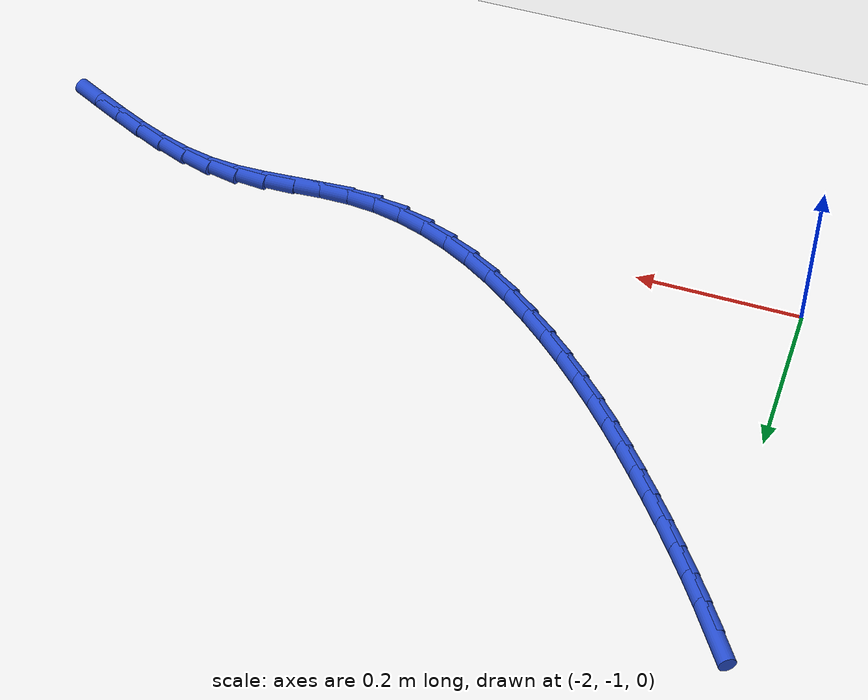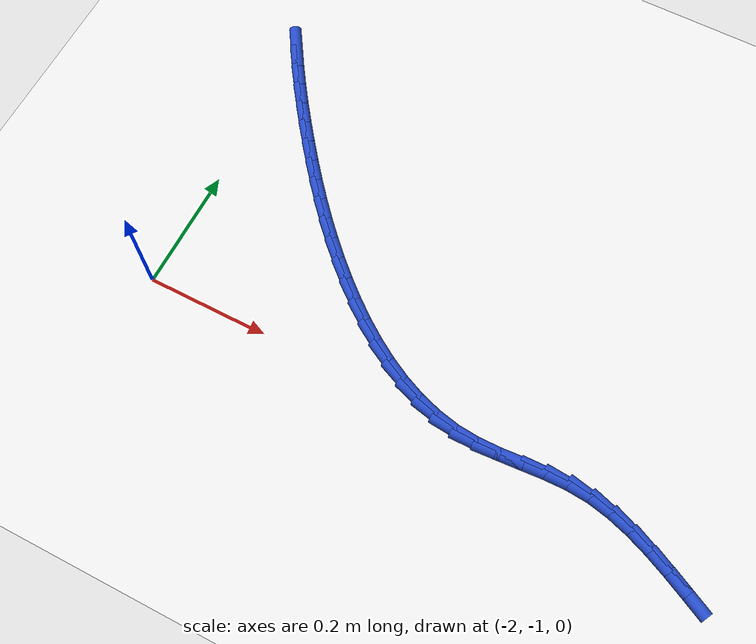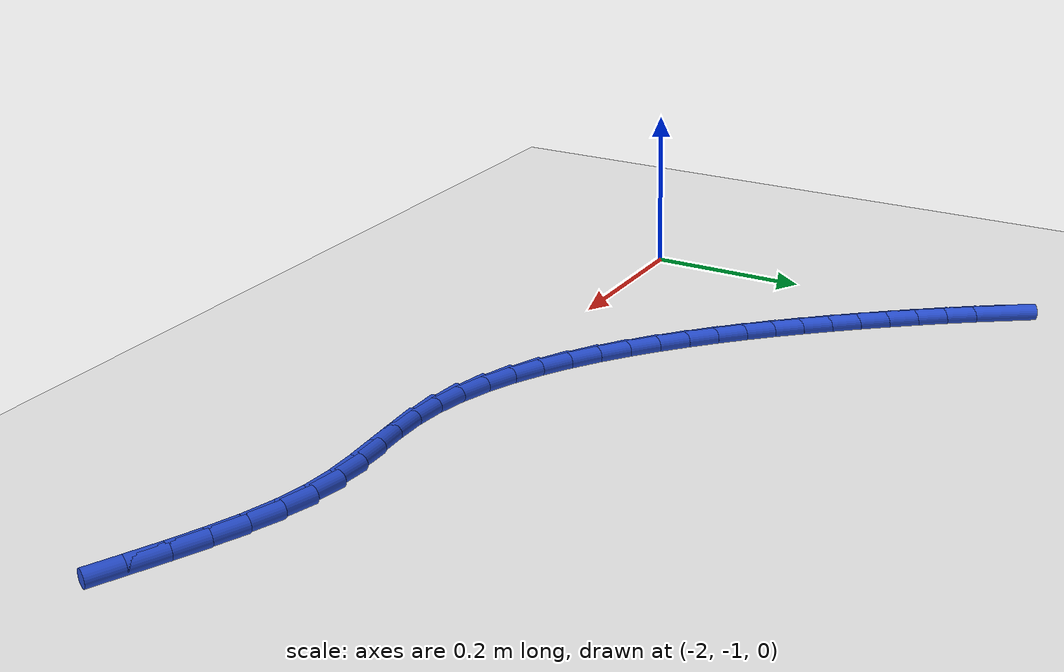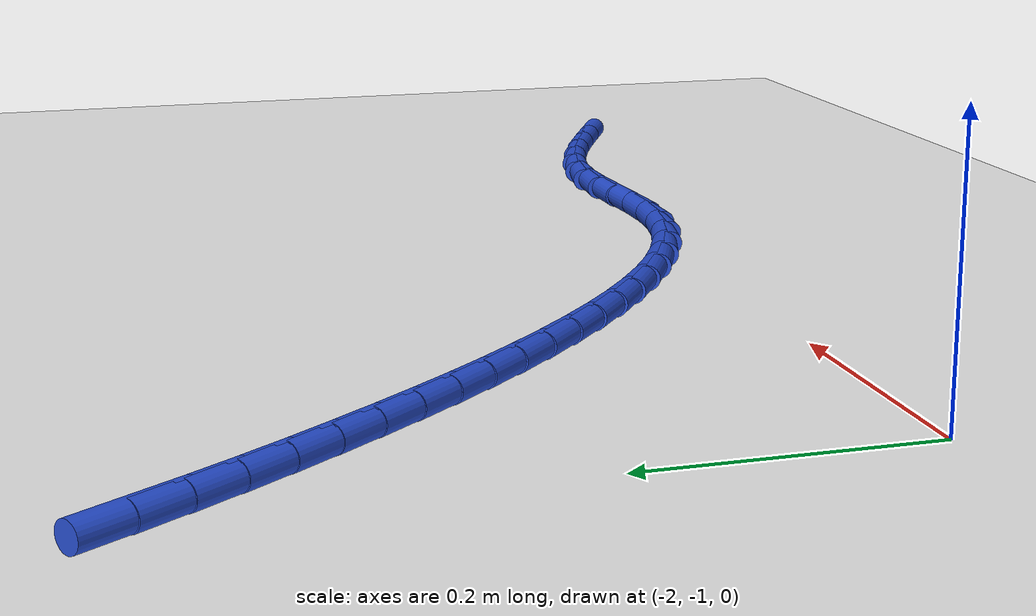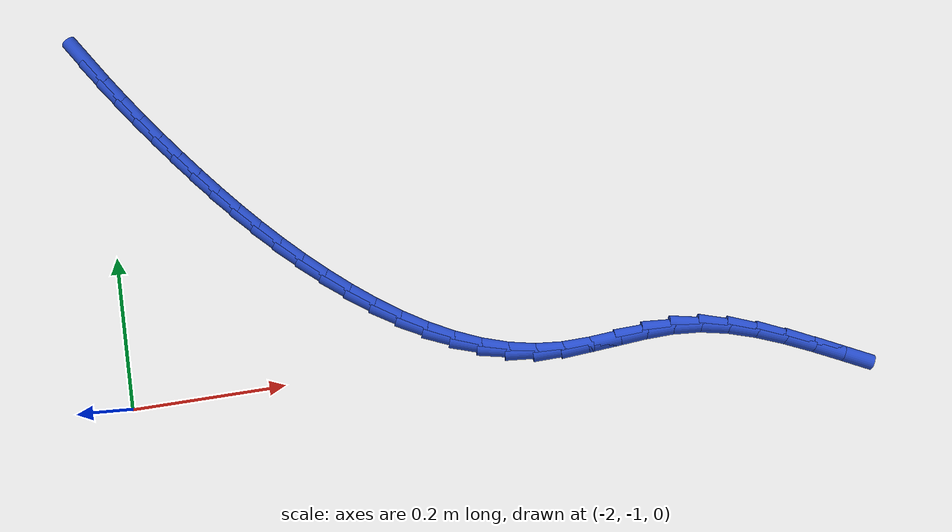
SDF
<sdf version="1.6">
 <world name="default">
  <model name="ground_plane">
   <static>1</static>
   <link name="link">
    <collision name="collision">
     <geometry><plane><normal>0 0 1</normal><size>100 100</size></plane></geometry>
     <surface><friction><ode><mu>100</mu><mu2>50</mu2></ode></friction></surface>
    </collision>
    <visual name="visual">
     <cast_shadows>0</cast_shadows>
     <geometry><plane><normal>0 0 1</normal><size>100 100</size></plane></geometry>
     <material>
      <script><uri>file://media/materials/scripts/gazebo.material</uri><name>Gazebo/WhiteGlow</name></script>
     </material>
    </visual>
   </link>
  </model>
  <model name="line">
   <link name="link_111">
    <pose>-2.0092869338174584 -0.5283137303353306 0.01 0 1.57 -0.9925357504558703</pose>
    <collision name="collision">
     <geometry><cylinder><radius>0.01</radius><length>0.08</length></cylinder></geometry>
    </collision>
    <visual name="visual">
     <material>
      <script><name>Gazebo/Blue</name><uri>file://media/materials/scripts/gazebo.material</uri></script>
     </material>
     <geometry><cylinder><radius>0.01</radius><length>0.08</length></cylinder></geometry>
    </visual>
   </link>
   <link name="link_112">
    <pose>-1.9890609110463715 -0.5593026701588538 0.01 0 1.57 -0.9690921564413186</pose>
    <collision name="collision">
     <geometry><cylinder><radius>0.01</radius><length>0.08</length></cylinder></geometry>
    </collision>
    <visual name="visual">
     <material>
      <script><name>Gazebo/Blue</name><uri>file://media/materials/scripts/gazebo.material</uri></script>
     </material>
     <geometry><cylinder><radius>0.01</radius><length>0.08</length></cylinder></geometry>
    </visual>
   </link>
   <link name="link_113">
    <pose>-1.9681020510424252 -0.5898263993406438 0.01 0 1.57 -0.9480353060623581</pose>
    <collision name="collision">
     <geometry><cylinder><radius>0.01</radius><length>0.08</length></cylinder></geometry>
    </collision>
    <visual name="visual">
     <material>
      <script><name>Gazebo/Blue</name><uri>file://media/materials/scripts/gazebo.material</uri></script>
     </material>
     <geometry><cylinder><radius>0.01</radius><length>0.08</length></cylinder></geometry>
    </visual>
   </link>
   <link name="link_114">
    <pose>-1.946532138960039 -0.6198644839655709 0.01 0 1.57 -0.9292447086996409</pose>
    <collision name="collision">
     <geometry><cylinder><radius>0.01</radius><length>0.08</length></cylinder></geometry>
    </collision>
    <visual name="visual">
     <material>
      <script><name>Gazebo/Blue</name><uri>file://media/materials/scripts/gazebo.material</uri></script>
     </material>
     <geometry><cylinder><radius>0.01</radius><length>0.08</length></cylinder></geometry>
    </visual>
   </link>
   <link name="link_115">
    <pose>-1.924472959953631 -0.6493964901185058 0.01 0 1.57 -0.9126201500073163</pose>
    <collision name="collision">
     <geometry><cylinder><radius>0.01</radius><length>0.08</length></cylinder></geometry>
    </collision>
    <visual name="visual">
     <material>
      <script><name>Gazebo/Blue</name><uri>file://media/materials/scripts/gazebo.material</uri></script>
     </material>
     <geometry><cylinder><radius>0.01</radius><length>0.08</length></cylinder></geometry>
    </visual>
   </link>
   <link name="link_116">
    <pose>-1.9020462991776221 -0.67840198388432 0.01 0 1.57 -0.897500401250793</pose>
    <collision name="collision">
     <geometry><cylinder><radius>0.01</radius><length>0.08</length></cylinder></geometry>
    </collision>
    <visual name="visual">
     <material>
      <script><name>Gazebo/Blue</name><uri>file://media/materials/scripts/gazebo.material</uri></script>
     </material>
     <geometry><cylinder><radius>0.01</radius><length>0.08</length></cylinder></geometry>
    </visual>
   </link>
   <link name="link_117">
    <pose>-1.8793444217026667 -0.7068635446658009 0.01 0 1.57 -0.880170001372706</pose>
    <collision name="collision">
     <geometry><cylinder><radius>0.01</radius><length>0.08</length></cylinder></geometry>
    </collision>
    <visual name="visual">
     <material>
      <script><name>Gazebo/Blue</name><uri>file://media/materials/scripts/gazebo.material</uri></script>
     </material>
     <geometry><cylinder><radius>0.01</radius><length>0.08</length></cylinder></geometry>
    </visual>
   </link>
   <link name="link_118">
    <pose>-1.8562721701270268 -0.7347828833661295 0.01 0 1.57 -0.8592908617874514</pose>
    <collision name="collision">
     <geometry><cylinder><radius>0.01</radius><length>0.08</length></cylinder></geometry>
    </collision>
    <visual name="visual">
     <material>
      <script><name>Gazebo/Blue</name><uri>file://media/materials/scripts/gazebo.material</uri></script>
     </material>
     <geometry><cylinder><radius>0.01</radius><length>0.08</length></cylinder></geometry>
    </visual>
   </link>
   <link name="link_119">
    <pose>-1.832661068503717 -0.7621691950165079 0.01 0 1.57 -0.8350611824157842</pose>
    <collision name="collision">
     <geometry><cylinder><radius>0.01</radius><length>0.08</length></cylinder></geometry>
    </collision>
    <visual name="visual">
     <material>
      <script><name>Gazebo/Blue</name><uri>file://media/materials/scripts/gazebo.material</uri></script>
     </material>
     <geometry><cylinder><radius>0.01</radius><length>0.08</length></cylinder></geometry>
    </visual>
   </link>
   <link name="link_120">
    <pose>-1.8083424709797136 -0.7890316919916143 0.01 0 1.57 -0.8077672773597999</pose>
    <collision name="collision">
     <geometry><cylinder><radius>0.01</radius><length>0.08</length></cylinder></geometry>
    </collision>
    <visual name="visual">
     <material>
      <script><name>Gazebo/Blue</name><uri>file://media/materials/scripts/gazebo.material</uri></script>
     </material>
     <geometry><cylinder><radius>0.01</radius><length>0.08</length></cylinder></geometry>
    </visual>
   </link>
   <link name="link_121">
    <pose>-1.7831477317019935 -0.8153795866661271 0.01 0 1.57 -0.7777752955231665</pose>
    <collision name="collision">
     <geometry><cylinder><radius>0.01</radius><length>0.08</length></cylinder></geometry>
    </collision>
    <visual name="visual">
     <material>
      <script><name>Gazebo/Blue</name><uri>file://media/materials/scripts/gazebo.material</uri></script>
     </material>
     <geometry><cylinder><radius>0.01</radius><length>0.08</length></cylinder></geometry>
    </visual>
   </link>
   <link name="link_122">
    <pose>-1.7569082048175337 -0.8412220914147248 0.01 0 1.57 -0.7454205065900692</pose>
    <collision name="collision">
     <geometry><cylinder><radius>0.01</radius><length>0.08</length></cylinder></geometry>
    </collision>
    <visual name="visual">
     <material>
      <script><name>Gazebo/Blue</name><uri>file://media/materials/scripts/gazebo.material</uri></script>
     </material>
     <geometry><cylinder><radius>0.01</radius><length>0.08</length></cylinder></geometry>
    </visual>
   </link>
   <link name="link_123">
    <pose>-1.7294613422253124 -0.8665577092591208 0.01 0 1.57 -0.7089347568070417</pose>
    <collision name="collision">
     <geometry><cylinder><radius>0.01</radius><length>0.08</length></cylinder></geometry>
    </collision>
    <visual name="visual">
     <material>
      <script><name>Gazebo/Blue</name><uri>file://media/materials/scripts/gazebo.material</uri></script>
     </material>
     <geometry><cylinder><radius>0.01</radius><length>0.08</length></cylinder></geometry>
    </visual>
   </link>
   <link name="link_124">
    <pose>-1.7007689457497235 -0.8911665500751561 0.01 0 1.57 -0.6659031467843936</pose>
    <collision name="collision">
     <geometry><cylinder><radius>0.01</radius><length>0.08</length></cylinder></geometry>
    </collision>
    <visual name="visual">
     <material>
      <script><name>Gazebo/Blue</name><uri>file://media/materials/scripts/gazebo.material</uri></script>
     </material>
     <geometry><cylinder><radius>0.01</radius><length>0.08</length></cylinder></geometry>
    </visual>
   </link>
   <link name="link_125">
    <pose>-1.6709089278376925 -0.9146248011063067 0.01 0 1.57 -0.6153594984852437</pose>
    <collision name="collision">
     <geometry><cylinder><radius>0.01</radius><length>0.08</length></cylinder></geometry>
    </collision>
    <visual name="visual">
     <material>
      <script><name>Gazebo/Blue</name><uri>file://media/materials/scripts/gazebo.material</uri></script>
     </material>
     <geometry><cylinder><radius>0.01</radius><length>0.08</length></cylinder></geometry>
    </visual>
   </link>
   <link name="link_126">
    <pose>-1.6399636483993292 -0.9365008386104631 0.01 0 1.57 -0.5562231241861842</pose>
    <collision name="collision">
     <geometry><cylinder><radius>0.01</radius><length>0.08</length></cylinder></geometry>
    </collision>
    <visual name="visual">
     <material>
      <script><name>Gazebo/Blue</name><uri>file://media/materials/scripts/gazebo.material</uri></script>
     </material>
     <geometry><cylinder><radius>0.01</radius><length>0.08</length></cylinder></geometry>
    </visual>
   </link>
   <link name="link_127">
    <pose>-1.608015467344742 -0.9563630388455138 0.01 0 1.57 -0.4872710765406199</pose>
    <collision name="collision">
     <geometry><cylinder><radius>0.01</radius><length>0.08</length></cylinder></geometry>
    </collision>
    <visual name="visual">
     <material>
      <script><name>Gazebo/Blue</name><uri>file://media/materials/scripts/gazebo.material</uri></script>
     </material>
     <geometry><cylinder><radius>0.01</radius><length>0.08</length></cylinder></geometry>
    </visual>
   </link>
   <link name="link_128">
    <pose>-1.5751467445840384 -0.973779778069347 0.01 0 1.57 -0.40724136874940015</pose>
    <collision name="collision">
     <geometry><cylinder><radius>0.01</radius><length>0.08</length></cylinder></geometry>
    </collision>
    <visual name="visual">
     <material>
      <script><name>Gazebo/Blue</name><uri>file://media/materials/scripts/gazebo.material</uri></script>
     </material>
     <geometry><cylinder><radius>0.01</radius><length>0.08</length></cylinder></geometry>
    </visual>
   </link>
   <link name="link_129">
    <pose>-1.5414398400273286 -0.9883194325398523 0.01 0 1.57 -0.31503372649115174</pose>
    <collision name="collision">
     <geometry><cylinder><radius>0.01</radius><length>0.08</length></cylinder></geometry>
    </collision>
    <visual name="visual">
     <material>
      <script><name>Gazebo/Blue</name><uri>file://media/materials/scripts/gazebo.material</uri></script>
     </material>
     <geometry><cylinder><radius>0.01</radius><length>0.08</length></cylinder></geometry>
    </visual>
   </link>
   <link name="link_130">
    <pose>-1.50697711358472 -0.9995503785149179 0.01 0 1.57 -0.21004357559563314</pose>
    <collision name="collision">
     <geometry><cylinder><radius>0.01</radius><length>0.08</length></cylinder></geometry>
    </collision>
    <visual name="visual">
     <material>
      <script><name>Gazebo/Blue</name><uri>file://media/materials/scripts/gazebo.material</uri></script>
     </material>
     <geometry><cylinder><radius>0.01</radius><length>0.08</length></cylinder></geometry>
    </visual>
   </link>
   <link name="link_131">
    <pose>-1.4718409251663223 -1.0070409922524335 0.01 0 1.57 -0.09291246672937445</pose>
    <collision name="collision">
     <geometry><cylinder><radius>0.01</radius><length>0.08</length></cylinder></geometry>
    </collision>
    <visual name="visual">
     <material>
      <script><name>Gazebo/Blue</name><uri>file://media/materials/scripts/gazebo.material</uri></script>
     </material>
     <geometry><cylinder><radius>0.01</radius><length>0.08</length></cylinder></geometry>
    </visual>
   </link>
   <link name="link_132">
    <pose>-1.436114104183527 -1.010370044435054 0.01 0 1.57 0.01226644461522866</pose>
    <collision name="collision">
     <geometry><cylinder><radius>0.01</radius><length>0.08</length></cylinder></geometry>
    </collision>
    <visual name="visual">
     <material>
      <script><name>Gazebo/Blue</name><uri>file://media/materials/scripts/gazebo.material</uri></script>
     </material>
     <geometry><cylinder><radius>0.01</radius><length>0.08</length></cylinder></geometry>
    </visual>
   </link>
   <link name="link_133">
    <pose>-1.3999160528126446 -1.0099260007714024 0.01 0 1.57 0.06712923105164754</pose>
    <collision name="collision">
     <geometry><cylinder><radius>0.01</radius><length>0.08</length></cylinder></geometry>
    </collision>
    <visual name="visual">
     <material>
      <script><name>Gazebo/Blue</name><uri>file://media/materials/scripts/gazebo.material</uri></script>
     </material>
     <geometry><cylinder><radius>0.01</radius><length>0.08</length></cylinder></geometry>
    </visual>
   </link>
   <link name="link_134">
    <pose>-1.3634283068215303 -1.0074729205333897 0.01 0 1.57 0.0699710948933142</pose>
    <collision name="collision">
     <geometry><cylinder><radius>0.01</radius><length>0.08</length></cylinder></geometry>
    </collision>
    <visual name="visual">
     <material>
      <script><name>Gazebo/Blue</name><uri>file://media/materials/scripts/gazebo.material</uri></script>
     </material>
     <geometry><cylinder><radius>0.01</radius><length>0.08</length></cylinder></geometry>
    </visual>
   </link>
   <link name="link_135">
    <pose>-1.3268384382111456 -1.0049085009044632 0.01 0 1.57 0.021310955273371936</pose>
    <collision name="collision">
     <geometry><cylinder><radius>0.01</radius><length>0.08</length></cylinder></geometry>
    </collision>
    <visual name="visual">
     <material>
      <script><name>Gazebo/Blue</name><uri>file://media/materials/scripts/gazebo.material</uri></script>
     </material>
     <geometry><cylinder><radius>0.01</radius><length>0.08</length></cylinder></geometry>
    </visual>
   </link>
   <link name="link_136">
    <pose>-1.290334018982451 -1.0041304390680719 0.01 0 1.57 -0.07945518711868803</pose>
    <collision name="collision">
     <geometry><cylinder><radius>0.01</radius><length>0.08</length></cylinder></geometry>
    </collision>
    <visual name="visual">
     <material>
      <script><name>Gazebo/Blue</name><uri>file://media/materials/scripts/gazebo.material</uri></script>
     </material>
     <geometry><cylinder><radius>0.01</radius><length>0.08</length></cylinder></geometry>
    </visual>
   </link>
   <link name="link_137">
    <pose>-1.2541009896510025 -1.007015414822726 0.01 0 1.57 -0.20226732589746513</pose>
    <collision name="collision">
     <geometry><cylinder><radius>0.01</radius><length>0.08</length></cylinder></geometry>
    </collision>
    <visual name="visual">
     <material>
      <script><name>Gazebo/Blue</name><uri>file://media/materials/scripts/gazebo.material</uri></script>
     </material>
     <geometry><cylinder><radius>0.01</radius><length>0.08</length></cylinder></geometry>
    </visual>
   </link>
   <link name="link_138">
    <pose>-1.2182421489388675 -1.014369045320099 0.01 0 1.57 -0.3022175208335319</pose>
    <collision name="collision">
     <geometry><cylinder><radius>0.01</radius><length>0.08</length></cylinder></geometry>
    </collision>
    <visual name="visual">
     <material>
      <script><name>Gazebo/Blue</name><uri>file://media/materials/scripts/gazebo.material</uri></script>
     </material>
     <geometry><cylinder><radius>0.01</radius><length>0.08</length></cylinder></geometry>
    </visual>
   </link>
   <link name="link_139">
    <pose>-1.1827392579734501 -1.0254376976515822 0.01 0 1.57 -0.37650905169983717</pose>
    <collision name="collision">
     <geometry><cylinder><radius>0.01</radius><length>0.08</length></cylinder></geometry>
    </collision>
    <visual name="visual">
     <material>
      <script><name>Gazebo/Blue</name><uri>file://media/materials/scripts/gazebo.material</uri></script>
     </material>
     <geometry><cylinder><radius>0.01</radius><length>0.08</length></cylinder></geometry>
    </visual>
   </link>
   <link name="link_140">
    <pose>-1.1475645305348101 -1.0393447465278833 0.01 0 1.57 -0.42702767888800364</pose>
    <collision name="collision">
     <geometry><cylinder><radius>0.01</radius><length>0.08</length></cylinder></geometry>
    </collision>
    <visual name="visual">
     <material>
      <script><name>Gazebo/Blue</name><uri>file://media/materials/scripts/gazebo.material</uri></script>
     </material>
     <geometry><cylinder><radius>0.01</radius><length>0.08</length></cylinder></geometry>
    </visual>
   </link>
   <link name="link_141">
    <pose>-1.1126901804030085 -1.0552135666597084 0.01 0 1.57 -0.45559477577948687</pose>
    <collision name="collision">
     <geometry><cylinder><radius>0.01</radius><length>0.08</length></cylinder></geometry>
    </collision>
    <visual name="visual">
     <material>
      <script><name>Gazebo/Blue</name><uri>file://media/materials/scripts/gazebo.material</uri></script>
     </material>
     <geometry><cylinder><radius>0.01</radius><length>0.08</length></cylinder></geometry>
    </visual>
   </link>
   <link name="link_142">
    <pose>-1.0780884213581066 -1.0721675327577656 0.01 0 1.57 -0.46327520600898886</pose>
    <collision name="collision">
     <geometry><cylinder><radius>0.01</radius><length>0.08</length></cylinder></geometry>
    </collision>
    <visual name="visual">
     <material>
      <script><name>Gazebo/Blue</name><uri>file://media/materials/scripts/gazebo.material</uri></script>
     </material>
     <geometry><cylinder><radius>0.01</radius><length>0.08</length></cylinder></geometry>
    </visual>
   </link>
  </model>
 </world>
</sdf>
